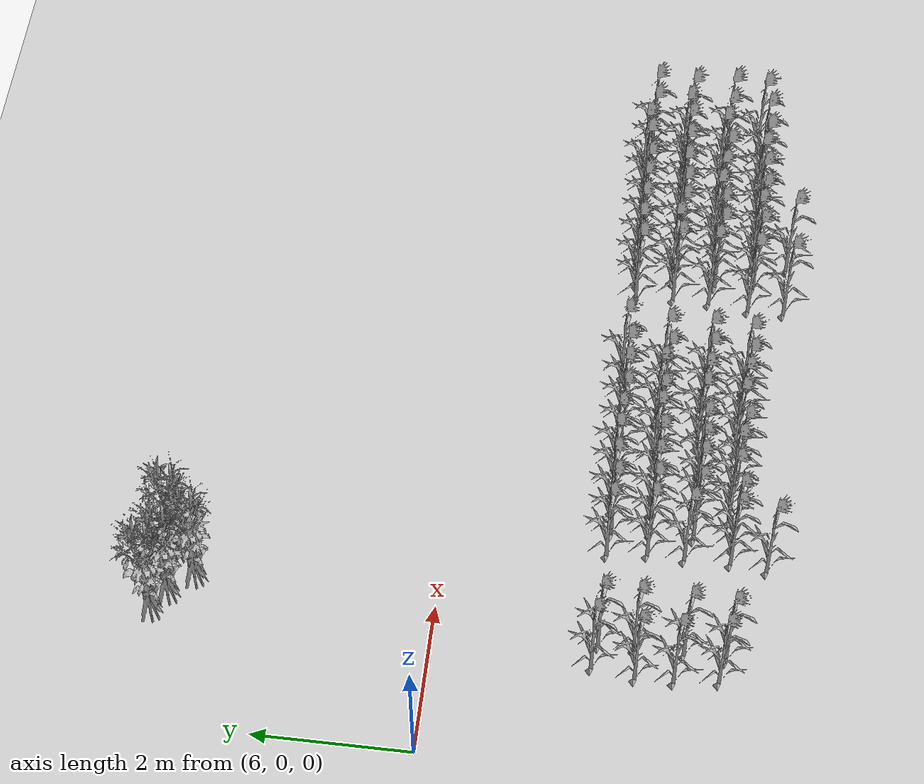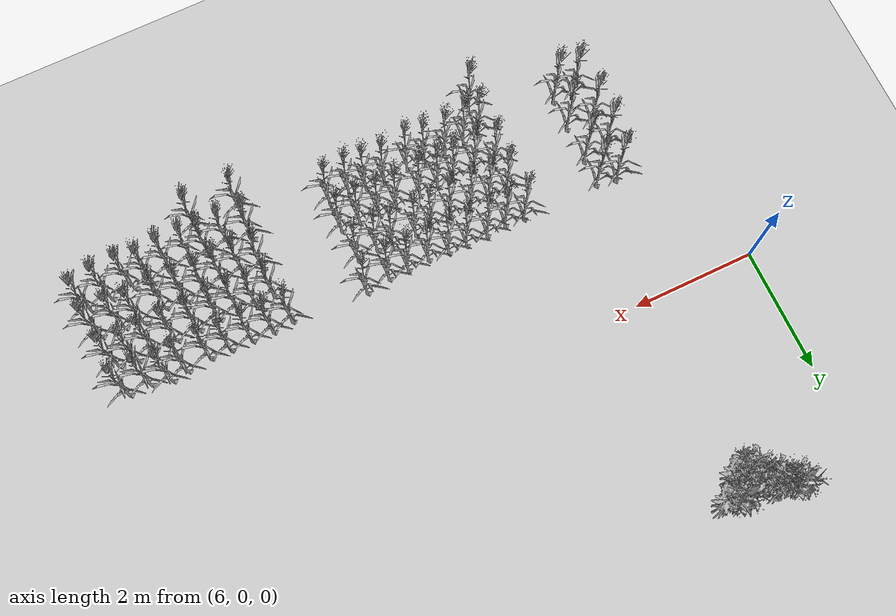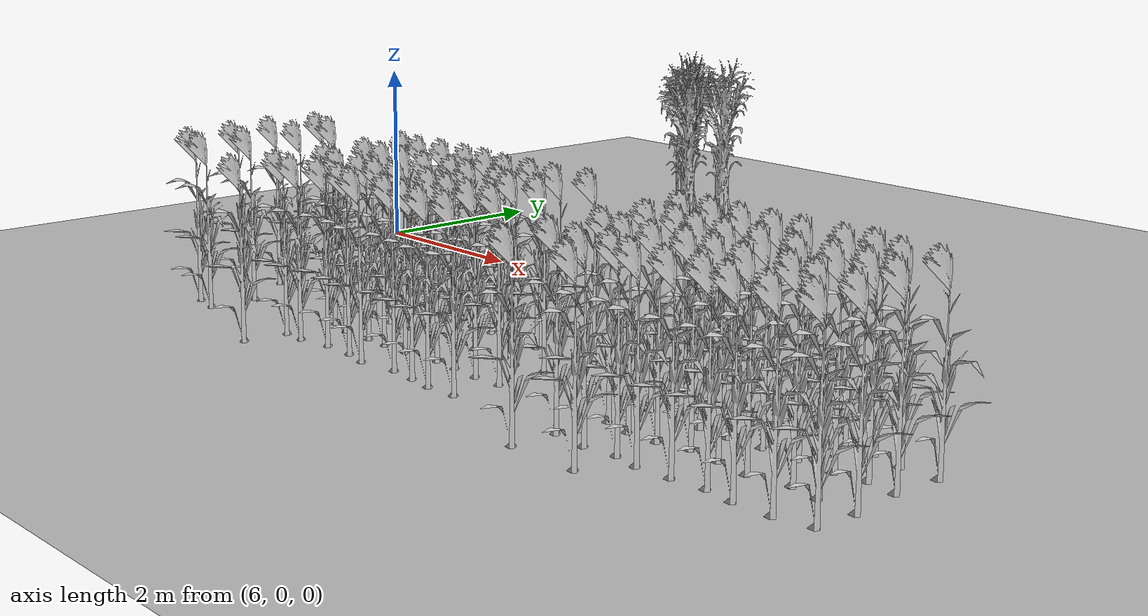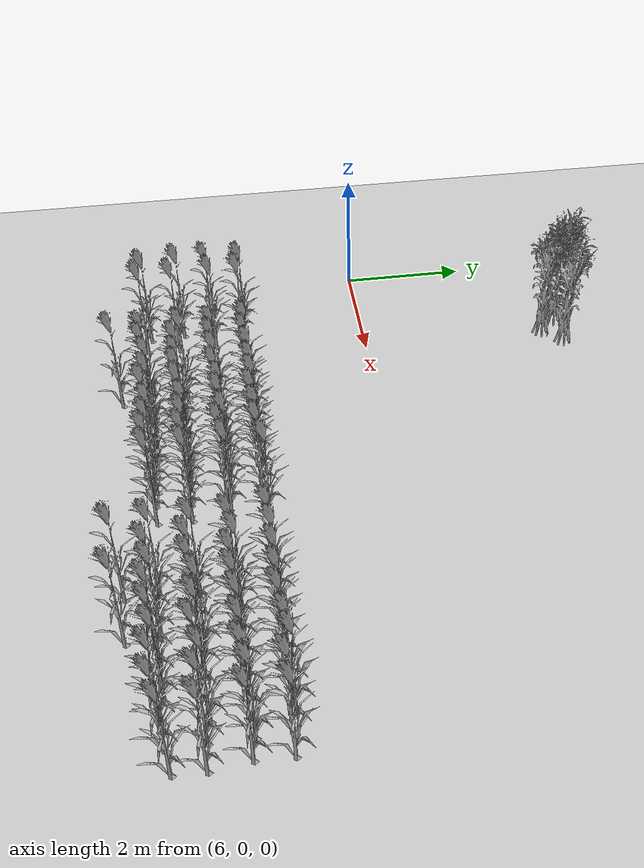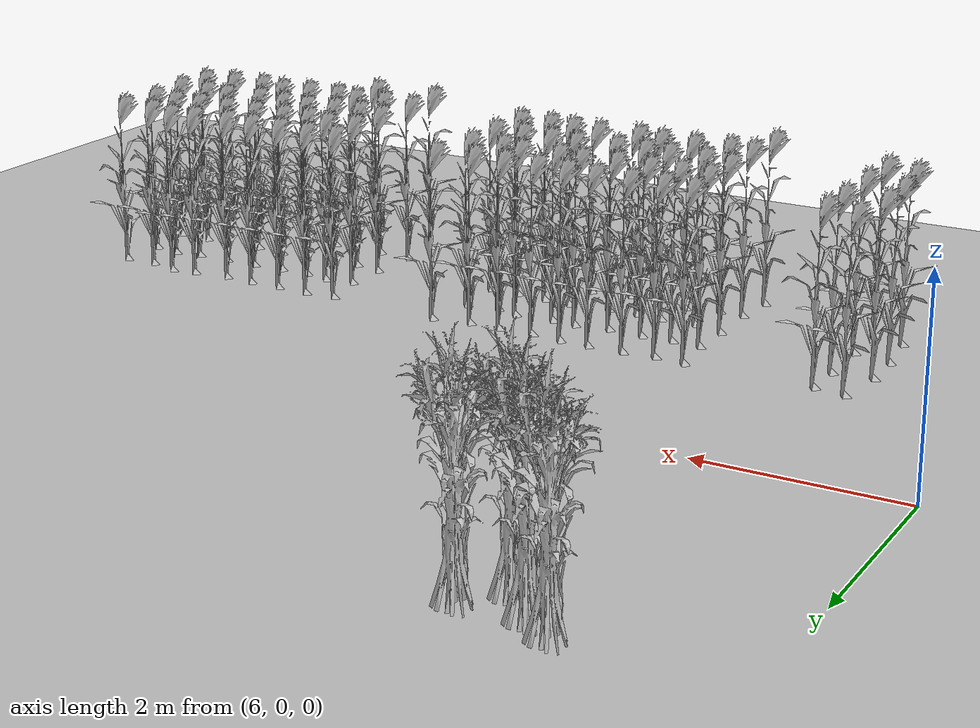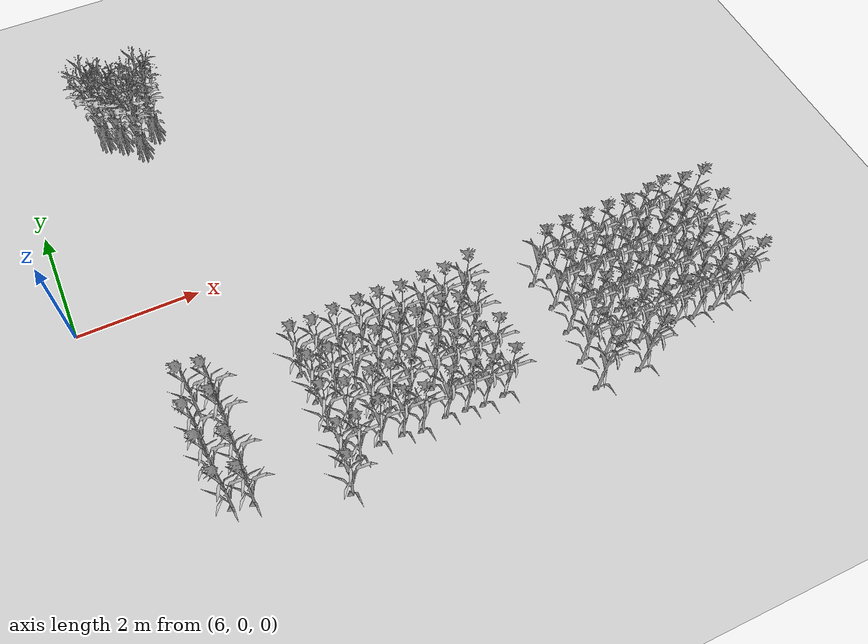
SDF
<sdf version="1.7">
 <world name="farmland_world">
  <model name="ground_plane">
   <static>1</static>
   <link name="link">
    <collision name="collision">
     <geometry><plane><normal>0 0 1</normal><size>40.0 40.0</size></plane></geometry>
     <surface><friction><ode><mu>100</mu><mu2>50</mu2></ode></friction></surface>
    </collision>
    <visual name="visual">
     <cast_shadows>0</cast_shadows>
     <geometry><plane><normal>0 0 1</normal><size>40.0 40.0</size></plane></geometry>
     <material>
      <script><uri>file://media/materials/scripts/gazebo.material</uri><name>Gazebo/Grey</name></script>
     </material>
    </visual>
   </link>
  </model>
  <model name="tree_2_120">
   <static>1</static>
   <link name="link">
    <collision name="collision">
     <geometry><mesh><uri>model://Corn/corn_5p.obj</uri><scale>1 1 1</scale></mesh></geometry>
     <surface><friction><ode><mu>100</mu><mu2>50</mu2></ode></friction></surface>
    </collision>
    <visual name="visual">
     <geometry><mesh><uri>model://Corn/corn_5p.obj</uri><scale>1 1 1</scale></mesh></geometry>
    </visual>
   </link>
   <pose>8.04357971192772 3.0130881612376155 0 0 0 0</pose>
  </model>
  <model name="tree_2_121">
   <static>1</static>
   <link name="link">
    <collision name="collision">
     <geometry><mesh><uri>model://Corn/corn_5p.obj</uri><scale>1 1 1</scale></mesh></geometry>
     <surface><friction><ode><mu>100</mu><mu2>50</mu2></ode></friction></surface>
    </collision>
    <visual name="visual">
     <geometry><mesh><uri>model://Corn/corn_5p.obj</uri><scale>1 1 1</scale></mesh></geometry>
    </visual>
   </link>
   <pose>7.769387552986887 3.3017834430280772 0 0 0 0</pose>
  </model>
  <model name="tree_2_122">
   <static>1</static>
   <link name="link">
    <collision name="collision">
     <geometry><mesh><uri>model://Corn/corn_5p.obj</uri><scale>1 1 1</scale></mesh></geometry>
     <surface><friction><ode><mu>100</mu><mu2>50</mu2></ode></friction></surface>
    </collision>
    <visual name="visual">
     <geometry><mesh><uri>model://Corn/corn_5p.obj</uri><scale>1 1 1</scale></mesh></geometry>
    </visual>
   </link>
   <pose>7.510651260987268 3.4666230860154768 0 0 0 0</pose>
  </model>
  <model name="tree_2_400">
   <static>1</static>
   <link name="link">
    <collision name="collision">
     <geometry><mesh><uri>model://Corn/corn_5p.obj</uri><scale>1 1 1</scale></mesh></geometry>
     <surface><friction><ode><mu>100</mu><mu2>50</mu2></ode></friction></surface>
    </collision>
    <visual name="visual">
     <geometry><mesh><uri>model://Corn/corn_5p.obj</uri><scale>1 1 1</scale></mesh></geometry>
    </visual>
   </link>
   <pose>8.346749247156719 3.3149582855917017 0 0 0 0</pose>
  </model>
  <model name="tree_3_210">
   <static>1</static>
   <link name="link">
    <collision name="collision">
     <geometry><mesh><uri>model://Corn_low_poly/corn.obj</uri><scale>1 1 1</scale></mesh></geometry>
     <surface><friction><ode><mu>100</mu><mu2>50</mu2></ode></friction></surface>
    </collision>
    <visual name="visual">
     <geometry><mesh><uri>model://Corn_low_poly/corn.obj</uri><scale>1 1 1</scale></mesh></geometry>
    </visual>
   </link>
   <pose>7.369794519775557 -1.970937490161373 0 0 0 0</pose>
  </model>
  <model name="tree_3_211">
   <static>1</static>
   <link name="link">
    <collision name="collision">
     <geometry><mesh><uri>model://Corn_low_poly/corn.obj</uri><scale>1 1 1</scale></mesh></geometry>
     <surface><friction><ode><mu>100</mu><mu2>50</mu2></ode></friction></surface>
    </collision>
    <visual name="visual">
     <geometry><mesh><uri>model://Corn_low_poly/corn.obj</uri><scale>1 1 1</scale></mesh></geometry>
    </visual>
   </link>
   <pose>7.2856913873748255 -2.5117933136473316 0 0 0 0</pose>
  </model>
  <model name="tree_3_212">
   <static>1</static>
   <link name="link">
    <collision name="collision">
     <geometry><mesh><uri>model://Corn_low_poly/corn.obj</uri><scale>1 1 1</scale></mesh></geometry>
     <surface><friction><ode><mu>100</mu><mu2>50</mu2></ode></friction></surface>
    </collision>
    <visual name="visual">
     <geometry><mesh><uri>model://Corn_low_poly/corn.obj</uri><scale>1 1 1</scale></mesh></geometry>
    </visual>
   </link>
   <pose>7.290873557259499 -2.98555031154544 0 0 0 0</pose>
  </model>
  <model name="tree_3_213">
   <static>1</static>
   <link name="link">
    <collision name="collision">
     <geometry><mesh><uri>model://Corn_low_poly/corn.obj</uri><scale>1 1 1</scale></mesh></geometry>
     <surface><friction><ode><mu>100</mu><mu2>50</mu2></ode></friction></surface>
    </collision>
    <visual name="visual">
     <geometry><mesh><uri>model://Corn_low_poly/corn.obj</uri><scale>1 1 1</scale></mesh></geometry>
    </visual>
   </link>
   <pose>7.353971171595851 -3.5365125737867995 0 0 0 0</pose>
  </model>
  <model name="tree_3_240">
   <static>1</static>
   <link name="link">
    <collision name="collision">
     <geometry><mesh><uri>model://Corn_low_poly/corn.obj</uri><scale>1 1 1</scale></mesh></geometry>
     <surface><friction><ode><mu>100</mu><mu2>50</mu2></ode></friction></surface>
    </collision>
    <visual name="visual">
     <geometry><mesh><uri>model://Corn_low_poly/corn.obj</uri><scale>1 1 1</scale></mesh></geometry>
    </visual>
   </link>
   <pose>7.685527965094424 -2.027486811773022 0 0 0 0</pose>
  </model>
  <model name="tree_3_241">
   <static>1</static>
   <link name="link">
    <collision name="collision">
     <geometry><mesh><uri>model://Corn_low_poly/corn.obj</uri><scale>1 1 1</scale></mesh></geometry>
     <surface><friction><ode><mu>100</mu><mu2>50</mu2></ode></friction></surface>
    </collision>
    <visual name="visual">
     <geometry><mesh><uri>model://Corn_low_poly/corn.obj</uri><scale>1 1 1</scale></mesh></geometry>
    </visual>
   </link>
   <pose>7.678549333669729 -2.468305985178104 0 0 0 0</pose>
  </model>
  <model name="tree_3_242">
   <static>1</static>
   <link name="link">
    <collision name="collision">
     <geometry><mesh><uri>model://Corn_low_poly/corn.obj</uri><scale>1 1 1</scale></mesh></geometry>
     <surface><friction><ode><mu>100</mu><mu2>50</mu2></ode></friction></surface>
    </collision>
    <visual name="visual">
     <geometry><mesh><uri>model://Corn_low_poly/corn.obj</uri><scale>1 1 1</scale></mesh></geometry>
    </visual>
   </link>
   <pose>7.678616627902855 -3.0826323150215247 0 0 0 0</pose>
  </model>
  <model name="tree_3_243">
   <static>1</static>
   <link name="link">
    <collision name="collision">
     <geometry><mesh><uri>model://Corn_low_poly/corn.obj</uri><scale>1 1 1</scale></mesh></geometry>
     <surface><friction><ode><mu>100</mu><mu2>50</mu2></ode></friction></surface>
    </collision>
    <visual name="visual">
     <geometry><mesh><uri>model://Corn_low_poly/corn.obj</uri><scale>1 1 1</scale></mesh></geometry>
    </visual>
   </link>
   <pose>7.661434512820129 -3.5992586650557956 0 0 0 0</pose>
  </model>
  <model name="tree_3_270">
   <static>1</static>
   <link name="link">
    <collision name="collision">
     <geometry><mesh><uri>model://Corn_low_poly/corn.obj</uri><scale>1 1 1</scale></mesh></geometry>
     <surface><friction><ode><mu>100</mu><mu2>50</mu2></ode></friction></surface>
    </collision>
    <visual name="visual">
     <geometry><mesh><uri>model://Corn_low_poly/corn.obj</uri><scale>1 1 1</scale></mesh></geometry>
    </visual>
   </link>
   <pose>8.978682090561577 -2.0122664876187484 0 0 0 0</pose>
  </model>
  <model name="tree_3_271">
   <static>1</static>
   <link name="link">
    <collision name="collision">
     <geometry><mesh><uri>model://Corn_low_poly/corn.obj</uri><scale>1 1 1</scale></mesh></geometry>
     <surface><friction><ode><mu>100</mu><mu2>50</mu2></ode></friction></surface>
    </collision>
    <visual name="visual">
     <geometry><mesh><uri>model://Corn_low_poly/corn.obj</uri><scale>1 1 1</scale></mesh></geometry>
    </visual>
   </link>
   <pose>9.040085086855983 -2.5209595092459622 0 0 0 0</pose>
  </model>
  <model name="tree_3_272">
   <static>1</static>
   <link name="link">
    <collision name="collision">
     <geometry><mesh><uri>model://Corn_low_poly/corn.obj</uri><scale>1 1 1</scale></mesh></geometry>
     <surface><friction><ode><mu>100</mu><mu2>50</mu2></ode></friction></surface>
    </collision>
    <visual name="visual">
     <geometry><mesh><uri>model://Corn_low_poly/corn.obj</uri><scale>1 1 1</scale></mesh></geometry>
    </visual>
   </link>
   <pose>9.024625678471299 -2.9894857367028633 0 0 0 0</pose>
  </model>
  <model name="tree_3_273">
   <static>1</static>
   <link name="link">
    <collision name="collision">
     <geometry><mesh><uri>model://Corn_low_poly/corn.obj</uri><scale>1 1 1</scale></mesh></geometry>
     <surface><friction><ode><mu>100</mu><mu2>50</mu2></ode></friction></surface>
    </collision>
    <visual name="visual">
     <geometry><mesh><uri>model://Corn_low_poly/corn.obj</uri><scale>1 1 1</scale></mesh></geometry>
    </visual>
   </link>
   <pose>9.030025059913507 -3.569100505424842 0 0 0 0</pose>
  </model>
  <model name="tree_3_274">
   <static>1</static>
   <link name="link">
    <collision name="collision">
     <geometry><mesh><uri>model://Corn_low_poly/corn.obj</uri><scale>1 1 1</scale></mesh></geometry>
     <surface><friction><ode><mu>100</mu><mu2>50</mu2></ode></friction></surface>
    </collision>
    <visual name="visual">
     <geometry><mesh><uri>model://Corn_low_poly/corn.obj</uri><scale>1 1 1</scale></mesh></geometry>
    </visual>
   </link>
   <pose>8.976619542908399 -4.025476766942341 0 0 0 0</pose>
  </model>
  <model name="tree_3_300">
   <static>1</static>
   <link name="link">
    <collision name="collision">
     <geometry><mesh><uri>model://Corn_low_poly/corn.obj</uri><scale>1 1 1</scale></mesh></geometry>
     <surface><friction><ode><mu>100</mu><mu2>50</mu2></ode></friction></surface>
    </collision>
    <visual name="visual">
     <geometry><mesh><uri>model://Corn_low_poly/corn.obj</uri><scale>1 1 1</scale></mesh></geometry>
    </visual>
   </link>
   <pose>9.292524992805745 -2.0422990189274417 0 0 0 0</pose>
  </model>
  <model name="tree_3_301">
   <static>1</static>
   <link name="link">
    <collision name="collision">
     <geometry><mesh><uri>model://Corn_low_poly/corn.obj</uri><scale>1 1 1</scale></mesh></geometry>
     <surface><friction><ode><mu>100</mu><mu2>50</mu2></ode></friction></surface>
    </collision>
    <visual name="visual">
     <geometry><mesh><uri>model://Corn_low_poly/corn.obj</uri><scale>1 1 1</scale></mesh></geometry>
    </visual>
   </link>
   <pose>9.339759190310382 -2.53545678926814 0 0 0 0</pose>
  </model>
  <model name="tree_3_302">
   <static>1</static>
   <link name="link">
    <collision name="collision">
     <geometry><mesh><uri>model://Corn_low_poly/corn.obj</uri><scale>1 1 1</scale></mesh></geometry>
     <surface><friction><ode><mu>100</mu><mu2>50</mu2></ode></friction></surface>
    </collision>
    <visual name="visual">
     <geometry><mesh><uri>model://Corn_low_poly/corn.obj</uri><scale>1 1 1</scale></mesh></geometry>
    </visual>
   </link>
   <pose>9.336894459739337 -3.0802019725710124 0 0 0 0</pose>
  </model>
  <model name="tree_3_303">
   <static>1</static>
   <link name="link">
    <collision name="collision">
     <geometry><mesh><uri>model://Corn_low_poly/corn.obj</uri><scale>1 1 1</scale></mesh></geometry>
     <surface><friction><ode><mu>100</mu><mu2>50</mu2></ode></friction></surface>
    </collision>
    <visual name="visual">
     <geometry><mesh><uri>model://Corn_low_poly/corn.obj</uri><scale>1 1 1</scale></mesh></geometry>
    </visual>
   </link>
   <pose>9.286190175258033 -3.5769592383417583 0 0 0 0</pose>
  </model>
  <model name="tree_3_330">
   <static>1</static>
   <link name="link">
    <collision name="collision">
     <geometry><mesh><uri>model://Corn_low_poly/corn.obj</uri><scale>1 1 1</scale></mesh></geometry>
     <surface><friction><ode><mu>100</mu><mu2>50</mu2></ode></friction></surface>
    </collision>
    <visual name="visual">
     <geometry><mesh><uri>model://Corn_low_poly/corn.obj</uri><scale>1 1 1</scale></mesh></geometry>
    </visual>
   </link>
   <pose>9.622393552487715 -2.011622877165077 0 0 0 0</pose>
  </model>
  <model name="tree_3_331">
   <static>1</static>
   <link name="link">
    <collision name="collision">
     <geometry><mesh><uri>model://Corn_low_poly/corn.obj</uri><scale>1 1 1</scale></mesh></geometry>
     <surface><friction><ode><mu>100</mu><mu2>50</mu2></ode></friction></surface>
    </collision>
    <visual name="visual">
     <geometry><mesh><uri>model://Corn_low_poly/corn.obj</uri><scale>1 1 1</scale></mesh></geometry>
    </visual>
   </link>
   <pose>9.660978657652999 -2.5239202772089584 0 0 0 0</pose>
  </model>
  <model name="tree_3_332">
   <static>1</static>
   <link name="link">
    <collision name="collision">
     <geometry><mesh><uri>model://Corn_low_poly/corn.obj</uri><scale>1 1 1</scale></mesh></geometry>
     <surface><friction><ode><mu>100</mu><mu2>50</mu2></ode></friction></surface>
    </collision>
    <visual name="visual">
     <geometry><mesh><uri>model://Corn_low_poly/corn.obj</uri><scale>1 1 1</scale></mesh></geometry>
    </visual>
   </link>
   <pose>9.706802185447382 -3.072479163819575 0 0 0 0</pose>
  </model>
  <model name="tree_3_333">
   <static>1</static>
   <link name="link">
    <collision name="collision">
     <geometry><mesh><uri>model://Corn_low_poly/corn.obj</uri><scale>1 1 1</scale></mesh></geometry>
     <surface><friction><ode><mu>100</mu><mu2>50</mu2></ode></friction></surface>
    </collision>
    <visual name="visual">
     <geometry><mesh><uri>model://Corn_low_poly/corn.obj</uri><scale>1 1 1</scale></mesh></geometry>
    </visual>
   </link>
   <pose>9.642625379760412 -3.5067399786313733 0 0 0 0</pose>
  </model>
  <model name="tree_3_360">
   <static>1</static>
   <link name="link">
    <collision name="collision">
     <geometry><mesh><uri>model://Corn_low_poly/corn.obj</uri><scale>1 1 1</scale></mesh></geometry>
     <surface><friction><ode><mu>100</mu><mu2>50</mu2></ode></friction></surface>
    </collision>
    <visual name="visual">
     <geometry><mesh><uri>model://Corn_low_poly/corn.obj</uri><scale>1 1 1</scale></mesh></geometry>
    </visual>
   </link>
   <pose>9.987312450846602 -2.0041174285012717 0 0 0 0</pose>
  </model>
  <model name="tree_3_361">
   <static>1</static>
   <link name="link">
    <collision name="collision">
     <geometry><mesh><uri>model://Corn_low_poly/corn.obj</uri><scale>1 1 1</scale></mesh></geometry>
     <surface><friction><ode><mu>100</mu><mu2>50</mu2></ode></friction></surface>
    </collision>
    <visual name="visual">
     <geometry><mesh><uri>model://Corn_low_poly/corn.obj</uri><scale>1 1 1</scale></mesh></geometry>
    </visual>
   </link>
   <pose>10.023859331028888 -2.538230301358276 0 0 0 0</pose>
  </model>
  <model name="tree_3_362">
   <static>1</static>
   <link name="link">
    <collision name="collision">
     <geometry><mesh><uri>model://Corn_low_poly/corn.obj</uri><scale>1 1 1</scale></mesh></geometry>
     <surface><friction><ode><mu>100</mu><mu2>50</mu2></ode></friction></surface>
    </collision>
    <visual name="visual">
     <geometry><mesh><uri>model://Corn_low_poly/corn.obj</uri><scale>1 1 1</scale></mesh></geometry>
    </visual>
   </link>
   <pose>9.975912978520011 -3.0810238017620586 0 0 0 0</pose>
  </model>
  <model name="tree_3_363">
   <static>1</static>
   <link name="link">
    <collision name="collision">
     <geometry><mesh><uri>model://Corn_low_poly/corn.obj</uri><scale>1 1 1</scale></mesh></geometry>
     <surface><friction><ode><mu>100</mu><mu2>50</mu2></ode></friction></surface>
    </collision>
    <visual name="visual">
     <geometry><mesh><uri>model://Corn_low_poly/corn.obj</uri><scale>1 1 1</scale></mesh></geometry>
    </visual>
   </link>
   <pose>10.004704408089747 -3.5124462776924523 0 0 0 0</pose>
  </model>
  <model name="tree_3_390">
   <static>1</static>
   <link name="link">
    <collision name="collision">
     <geometry><mesh><uri>model://Corn_low_poly/corn.obj</uri><scale>1 1 1</scale></mesh></geometry>
     <surface><friction><ode><mu>100</mu><mu2>50</mu2></ode></friction></surface>
    </collision>
    <visual name="visual">
     <geometry><mesh><uri>model://Corn_low_poly/corn.obj</uri><scale>1 1 1</scale></mesh></geometry>
    </visual>
   </link>
   <pose>10.292987297121025 -2.0080922359807314 0 0 0 0</pose>
  </model>
  <model name="tree_3_391">
   <static>1</static>
   <link name="link">
    <collision name="collision">
     <geometry><mesh><uri>model://Corn_low_poly/corn.obj</uri><scale>1 1 1</scale></mesh></geometry>
     <surface><friction><ode><mu>100</mu><mu2>50</mu2></ode></friction></surface>
    </collision>
    <visual name="visual">
     <geometry><mesh><uri>model://Corn_low_poly/corn.obj</uri><scale>1 1 1</scale></mesh></geometry>
    </visual>
   </link>
   <pose>10.375018549700316 -2.4842416791181234 0 0 0 0</pose>
  </model>
  <model name="tree_3_392">
   <static>1</static>
   <link name="link">
    <collision name="collision">
     <geometry><mesh><uri>model://Corn_low_poly/corn.obj</uri><scale>1 1 1</scale></mesh></geometry>
     <surface><friction><ode><mu>100</mu><mu2>50</mu2></ode></friction></surface>
    </collision>
    <visual name="visual">
     <geometry><mesh><uri>model://Corn_low_poly/corn.obj</uri><scale>1 1 1</scale></mesh></geometry>
    </visual>
   </link>
   <pose>10.290886504799403 -3.071423018015004 0 0 0 0</pose>
  </model>
  <model name="tree_3_393">
   <static>1</static>
   <link name="link">
    <collision name="collision">
     <geometry><mesh><uri>model://Corn_low_poly/corn.obj</uri><scale>1 1 1</scale></mesh></geometry>
     <surface><friction><ode><mu>100</mu><mu2>50</mu2></ode></friction></surface>
    </collision>
    <visual name="visual">
     <geometry><mesh><uri>model://Corn_low_poly/corn.obj</uri><scale>1 1 1</scale></mesh></geometry>
    </visual>
   </link>
   <pose>10.283833184186852 -3.5740963417907574 0 0 0 0</pose>
  </model>
  <model name="tree_3_420">
   <static>1</static>
   <link name="link">
    <collision name="collision">
     <geometry><mesh><uri>model://Corn_low_poly/corn.obj</uri><scale>1 1 1</scale></mesh></geometry>
     <surface><friction><ode><mu>100</mu><mu2>50</mu2></ode></friction></surface>
    </collision>
    <visual name="visual">
     <geometry><mesh><uri>model://Corn_low_poly/corn.obj</uri><scale>1 1 1</scale></mesh></geometry>
    </visual>
   </link>
   <pose>10.626259388033088 -2.04502143156429 0 0 0 0</pose>
  </model>
  <model name="tree_3_421">
   <static>1</static>
   <link name="link">
    <collision name="collision">
     <geometry><mesh><uri>model://Corn_low_poly/corn.obj</uri><scale>1 1 1</scale></mesh></geometry>
     <surface><friction><ode><mu>100</mu><mu2>50</mu2></ode></friction></surface>
    </collision>
    <visual name="visual">
     <geometry><mesh><uri>model://Corn_low_poly/corn.obj</uri><scale>1 1 1</scale></mesh></geometry>
    </visual>
   </link>
   <pose>10.63303103599766 -2.502255449278744 0 0 0 0</pose>
  </model>
  <model name="tree_3_422">
   <static>1</static>
   <link name="link">
    <collision name="collision">
     <geometry><mesh><uri>model://Corn_low_poly/corn.obj</uri><scale>1 1 1</scale></mesh></geometry>
     <surface><friction><ode><mu>100</mu><mu2>50</mu2></ode></friction></surface>
    </collision>
    <visual name="visual">
     <geometry><mesh><uri>model://Corn_low_poly/corn.obj</uri><scale>1 1 1</scale></mesh></geometry>
    </visual>
   </link>
   <pose>10.716298916198658 -3.021823302006742 0 0 0 0</pose>
  </model>
  <model name="tree_3_423">
   <static>1</static>
   <link name="link">
    <collision name="collision">
     <geometry><mesh><uri>model://Corn_low_poly/corn.obj</uri><scale>1 1 1</scale></mesh></geometry>
     <surface><friction><ode><mu>100</mu><mu2>50</mu2></ode></friction></surface>
    </collision>
    <visual name="visual">
     <geometry><mesh><uri>model://Corn_low_poly/corn.obj</uri><scale>1 1 1</scale></mesh></geometry>
    </visual>
   </link>
   <pose>10.70649710108098 -3.511057494556414 0 0 0 0</pose>
  </model>
  <model name="tree_3_450">
   <static>1</static>
   <link name="link">
    <collision name="collision">
     <geometry><mesh><uri>model://Corn_low_poly/corn.obj</uri><scale>1 1 1</scale></mesh></geometry>
     <surface><friction><ode><mu>100</mu><mu2>50</mu2></ode></friction></surface>
    </collision>
    <visual name="visual">
     <geometry><mesh><uri>model://Corn_low_poly/corn.obj</uri><scale>1 1 1</scale></mesh></geometry>
    </visual>
   </link>
   <pose>10.983723755823545 -2.0277126692752088 0 0 0 0</pose>
  </model>
  <model name="tree_3_451">
   <static>1</static>
   <link name="link">
    <collision name="collision">
     <geometry><mesh><uri>model://Corn_low_poly/corn.obj</uri><scale>1 1 1</scale></mesh></geometry>
     <surface><friction><ode><mu>100</mu><mu2>50</mu2></ode></friction></surface>
    </collision>
    <visual name="visual">
     <geometry><mesh><uri>model://Corn_low_poly/corn.obj</uri><scale>1 1 1</scale></mesh></geometry>
    </visual>
   </link>
   <pose>11.040696475302072 -2.469869753311957 0 0 0 0</pose>
  </model>
  <model name="tree_3_452">
   <static>1</static>
   <link name="link">
    <collision name="collision">
     <geometry><mesh><uri>model://Corn_low_poly/corn.obj</uri><scale>1 1 1</scale></mesh></geometry>
     <surface><friction><ode><mu>100</mu><mu2>50</mu2></ode></friction></surface>
    </collision>
    <visual name="visual">
     <geometry><mesh><uri>model://Corn_low_poly/corn.obj</uri><scale>1 1 1</scale></mesh></geometry>
    </visual>
   </link>
   <pose>11.011398937852684 -3.0423751665314445 0 0 0 0</pose>
  </model>
  <model name="tree_3_453">
   <static>1</static>
   <link name="link">
    <collision name="collision">
     <geometry><mesh><uri>model://Corn_low_poly/corn.obj</uri><scale>1 1 1</scale></mesh></geometry>
     <surface><friction><ode><mu>100</mu><mu2>50</mu2></ode></friction></surface>
    </collision>
    <visual name="visual">
     <geometry><mesh><uri>model://Corn_low_poly/corn.obj</uri><scale>1 1 1</scale></mesh></geometry>
    </visual>
   </link>
   <pose>11.017196231576007 -3.5395434829519576 0 0 0 0</pose>
  </model>
  <model name="tree_3_480">
   <static>1</static>
   <link name="link">
    <collision name="collision">
     <geometry><mesh><uri>model://Corn_low_poly/corn.obj</uri><scale>1 1 1</scale></mesh></geometry>
     <surface><friction><ode><mu>100</mu><mu2>50</mu2></ode></friction></surface>
    </collision>
    <visual name="visual">
     <geometry><mesh><uri>model://Corn_low_poly/corn.obj</uri><scale>1 1 1</scale></mesh></geometry>
    </visual>
   </link>
   <pose>11.312919422427465 -2.027162564590065 0 0 0 0</pose>
  </model>
  <model name="tree_3_481">
   <static>1</static>
   <link name="link">
    <collision name="collision">
     <geometry><mesh><uri>model://Corn_low_poly/corn.obj</uri><scale>1 1 1</scale></mesh></geometry>
     <surface><friction><ode><mu>100</mu><mu2>50</mu2></ode></friction></surface>
    </collision>
    <visual name="visual">
     <geometry><mesh><uri>model://Corn_low_poly/corn.obj</uri><scale>1 1 1</scale></mesh></geometry>
    </visual>
   </link>
   <pose>11.28287060041693 -2.5452958089495192 0 0 0 0</pose>
  </model>
  <model name="tree_3_482">
   <static>1</static>
   <link name="link">
    <collision name="collision">
     <geometry><mesh><uri>model://Corn_low_poly/corn.obj</uri><scale>1 1 1</scale></mesh></geometry>
     <surface><friction><ode><mu>100</mu><mu2>50</mu2></ode></friction></surface>
    </collision>
    <visual name="visual">
     <geometry><mesh><uri>model://Corn_low_poly/corn.obj</uri><scale>1 1 1</scale></mesh></geometry>
    </visual>
   </link>
   <pose>11.340034722740373 -3.069454616067834 0 0 0 0</pose>
  </model>
  <model name="tree_3_483">
   <static>1</static>
   <link name="link">
    <collision name="collision">
     <geometry><mesh><uri>model://Corn_low_poly/corn.obj</uri><scale>1 1 1</scale></mesh></geometry>
     <surface><friction><ode><mu>100</mu><mu2>50</mu2></ode></friction></surface>
    </collision>
    <visual name="visual">
     <geometry><mesh><uri>model://Corn_low_poly/corn.obj</uri><scale>1 1 1</scale></mesh></geometry>
    </visual>
   </link>
   <pose>11.296350057636705 -3.5763666508879752 0 0 0 0</pose>
  </model>
  <model name="tree_3_510">
   <static>1</static>
   <link name="link">
    <collision name="collision">
     <geometry><mesh><uri>model://Corn_low_poly/corn.obj</uri><scale>1 1 1</scale></mesh></geometry>
     <surface><friction><ode><mu>100</mu><mu2>50</mu2></ode></friction></surface>
    </collision>
    <visual name="visual">
     <geometry><mesh><uri>model://Corn_low_poly/corn.obj</uri><scale>1 1 1</scale></mesh></geometry>
    </visual>
   </link>
   <pose>11.715445190778427 -1.966340978732283 0 0 0 0</pose>
  </model>
  <model name="tree_3_511">
   <static>1</static>
   <link name="link">
    <collision name="collision">
     <geometry><mesh><uri>model://Corn_low_poly/corn.obj</uri><scale>1 1 1</scale></mesh></geometry>
     <surface><friction><ode><mu>100</mu><mu2>50</mu2></ode></friction></surface>
    </collision>
    <visual name="visual">
     <geometry><mesh><uri>model://Corn_low_poly/corn.obj</uri><scale>1 1 1</scale></mesh></geometry>
    </visual>
   </link>
   <pose>11.623592363847498 -2.4988257413671726 0 0 0 0</pose>
  </model>
  <model name="tree_3_512">
   <static>1</static>
   <link name="link">
    <collision name="collision">
     <geometry><mesh><uri>model://Corn_low_poly/corn.obj</uri><scale>1 1 1</scale></mesh></geometry>
     <surface><friction><ode><mu>100</mu><mu2>50</mu2></ode></friction></surface>
    </collision>
    <visual name="visual">
     <geometry><mesh><uri>model://Corn_low_poly/corn.obj</uri><scale>1 1 1</scale></mesh></geometry>
    </visual>
   </link>
   <pose>11.657662450810287 -3.0580251417325974 0 0 0 0</pose>
  </model>
  <model name="tree_3_513">
   <static>1</static>
   <link name="link">
    <collision name="collision">
     <geometry><mesh><uri>model://Corn_low_poly/corn.obj</uri><scale>1 1 1</scale></mesh></geometry>
     <surface><friction><ode><mu>100</mu><mu2>50</mu2></ode></friction></surface>
    </collision>
    <visual name="visual">
     <geometry><mesh><uri>model://Corn_low_poly/corn.obj</uri><scale>1 1 1</scale></mesh></geometry>
    </visual>
   </link>
   <pose>11.63865990092762 -3.5583951397912936 0 0 0 0</pose>
  </model>
  <model name="tree_3_540">
   <static>1</static>
   <link name="link">
    <collision name="collision">
     <geometry><mesh><uri>model://Corn_low_poly/corn.obj</uri><scale>1 1 1</scale></mesh></geometry>
     <surface><friction><ode><mu>100</mu><mu2>50</mu2></ode></friction></surface>
    </collision>
    <visual name="visual">
     <geometry><mesh><uri>model://Corn_low_poly/corn.obj</uri><scale>1 1 1</scale></mesh></geometry>
    </visual>
   </link>
   <pose>12.95237530625401 -2.0424419963365343 0 0 0 0</pose>
  </model>
  <model name="tree_3_541">
   <static>1</static>
   <link name="link">
    <collision name="collision">
     <geometry><mesh><uri>model://Corn_low_poly/corn.obj</uri><scale>1 1 1</scale></mesh></geometry>
     <surface><friction><ode><mu>100</mu><mu2>50</mu2></ode></friction></surface>
    </collision>
    <visual name="visual">
     <geometry><mesh><uri>model://Corn_low_poly/corn.obj</uri><scale>1 1 1</scale></mesh></geometry>
    </visual>
   </link>
   <pose>13.042858982420348 -2.5394761883913755 0 0 0 0</pose>
  </model>
  <model name="tree_3_542">
   <static>1</static>
   <link name="link">
    <collision name="collision">
     <geometry><mesh><uri>model://Corn_low_poly/corn.obj</uri><scale>1 1 1</scale></mesh></geometry>
     <surface><friction><ode><mu>100</mu><mu2>50</mu2></ode></friction></surface>
    </collision>
    <visual name="visual">
     <geometry><mesh><uri>model://Corn_low_poly/corn.obj</uri><scale>1 1 1</scale></mesh></geometry>
    </visual>
   </link>
   <pose>13.028956414449695 -3.0185729146257962 0 0 0 0</pose>
  </model>
  <model name="tree_3_543">
   <static>1</static>
   <link name="link">
    <collision name="collision">
     <geometry><mesh><uri>model://Corn_low_poly/corn.obj</uri><scale>1 1 1</scale></mesh></geometry>
     <surface><friction><ode><mu>100</mu><mu2>50</mu2></ode></friction></surface>
    </collision>
    <visual name="visual">
     <geometry><mesh><uri>model://Corn_low_poly/corn.obj</uri><scale>1 1 1</scale></mesh></geometry>
    </visual>
   </link>
   <pose>12.969616864633894 -3.5493789348301816 0 0 0 0</pose>
  </model>
  <model name="tree_3_544">
   <static>1</static>
   <link name="link">
    <collision name="collision">
     <geometry><mesh><uri>model://Corn_low_poly/corn.obj</uri><scale>1 1 1</scale></mesh></geometry>
     <surface><friction><ode><mu>100</mu><mu2>50</mu2></ode></friction></surface>
    </collision>
    <visual name="visual">
     <geometry><mesh><uri>model://Corn_low_poly/corn.obj</uri><scale>1 1 1</scale></mesh></geometry>
    </visual>
   </link>
   <pose>12.971202307982425 -4.024955077719942 0 0 0 0</pose>
  </model>
  <model name="tree_3_570">
   <static>1</static>
   <link name="link">
    <collision name="collision">
     <geometry><mesh><uri>model://Corn_low_poly/corn.obj</uri><scale>1 1 1</scale></mesh></geometry>
     <surface><friction><ode><mu>100</mu><mu2>50</mu2></ode></friction></surface>
    </collision>
    <visual name="visual">
     <geometry><mesh><uri>model://Corn_low_poly/corn.obj</uri><scale>1 1 1</scale></mesh></geometry>
    </visual>
   </link>
   <pose>13.28507618941706 -2.0153767326748664 0 0 0 0</pose>
  </model>
  <model name="tree_3_571">
   <static>1</static>
   <link name="link">
    <collision name="collision">
     <geometry><mesh><uri>model://Corn_low_poly/corn.obj</uri><scale>1 1 1</scale></mesh></geometry>
     <surface><friction><ode><mu>100</mu><mu2>50</mu2></ode></friction></surface>
    </collision>
    <visual name="visual">
     <geometry><mesh><uri>model://Corn_low_poly/corn.obj</uri><scale>1 1 1</scale></mesh></geometry>
    </visual>
   </link>
   <pose>13.352499360267506 -2.49086259055416 0 0 0 0</pose>
  </model>
  <model name="tree_3_572">
   <static>1</static>
   <link name="link">
    <collision name="collision">
     <geometry><mesh><uri>model://Corn_low_poly/corn.obj</uri><scale>1 1 1</scale></mesh></geometry>
     <surface><friction><ode><mu>100</mu><mu2>50</mu2></ode></friction></surface>
    </collision>
    <visual name="visual">
     <geometry><mesh><uri>model://Corn_low_poly/corn.obj</uri><scale>1 1 1</scale></mesh></geometry>
    </visual>
   </link>
   <pose>13.330214316359129 -3.080026700611082 0 0 0 0</pose>
  </model>
  <model name="tree_3_573">
   <static>1</static>
   <link name="link">
    <collision name="collision">
     <geometry><mesh><uri>model://Corn_low_poly/corn.obj</uri><scale>1 1 1</scale></mesh></geometry>
     <surface><friction><ode><mu>100</mu><mu2>50</mu2></ode></friction></surface>
    </collision>
    <visual name="visual">
     <geometry><mesh><uri>model://Corn_low_poly/corn.obj</uri><scale>1 1 1</scale></mesh></geometry>
    </visual>
   </link>
   <pose>13.352235172174407 -3.5928311464617995 0 0 0 0</pose>
  </model>
  <model name="tree_3_600">
   <static>1</static>
   <link name="link">
    <collision name="collision">
     <geometry><mesh><uri>model://Corn_low_poly/corn.obj</uri><scale>1 1 1</scale></mesh></geometry>
     <surface><friction><ode><mu>100</mu><mu2>50</mu2></ode></friction></surface>
    </collision>
    <visual name="visual">
     <geometry><mesh><uri>model://Corn_low_poly/corn.obj</uri><scale>1 1 1</scale></mesh></geometry>
    </visual>
   </link>
   <pose>13.633223166173913 -2.0240768908437916 0 0 0 0</pose>
  </model>
  <model name="tree_3_601">
   <static>1</static>
   <link name="link">
    <collision name="collision">
     <geometry><mesh><uri>model://Corn_low_poly/corn.obj</uri><scale>1 1 1</scale></mesh></geometry>
     <surface><friction><ode><mu>100</mu><mu2>50</mu2></ode></friction></surface>
    </collision>
    <visual name="visual">
     <geometry><mesh><uri>model://Corn_low_poly/corn.obj</uri><scale>1 1 1</scale></mesh></geometry>
    </visual>
   </link>
   <pose>13.637641060646219 -2.55603300968741 0 0 0 0</pose>
  </model>
  <model name="tree_3_602">
   <static>1</static>
   <link name="link">
    <collision name="collision">
     <geometry><mesh><uri>model://Corn_low_poly/corn.obj</uri><scale>1 1 1</scale></mesh></geometry>
     <surface><friction><ode><mu>100</mu><mu2>50</mu2></ode></friction></surface>
    </collision>
    <visual name="visual">
     <geometry><mesh><uri>model://Corn_low_poly/corn.obj</uri><scale>1 1 1</scale></mesh></geometry>
    </visual>
   </link>
   <pose>13.652931398837833 -3.070706051609445 0 0 0 0</pose>
  </model>
  <model name="tree_3_603">
   <static>1</static>
   <link name="link">
    <collision name="collision">
     <geometry><mesh><uri>model://Corn_low_poly/corn.obj</uri><scale>1 1 1</scale></mesh></geometry>
     <surface><friction><ode><mu>100</mu><mu2>50</mu2></ode></friction></surface>
    </collision>
    <visual name="visual">
     <geometry><mesh><uri>model://Corn_low_poly/corn.obj</uri><scale>1 1 1</scale></mesh></geometry>
    </visual>
   </link>
   <pose>13.688543441598942 -3.5490188645893244 0 0 0 0</pose>
  </model>
  <model name="tree_3_604">
   <static>1</static>
   <link name="link">
    <collision name="collision">
     <geometry><mesh><uri>model://Corn_low_poly/corn.obj</uri><scale>1 1 1</scale></mesh></geometry>
     <surface><friction><ode><mu>100</mu><mu2>50</mu2></ode></friction></surface>
    </collision>
    <visual name="visual">
     <geometry><mesh><uri>model://Corn_low_poly/corn.obj</uri><scale>1 1 1</scale></mesh></geometry>
    </visual>
   </link>
   <pose>13.709821030499748 -4.02321043080377 0 0 0 0</pose>
  </model>
  <model name="tree_3_630">
   <static>1</static>
   <link name="link">
    <collision name="collision">
     <geometry><mesh><uri>model://Corn_low_poly/corn.obj</uri><scale>1 1 1</scale></mesh></geometry>
     <surface><friction><ode><mu>100</mu><mu2>50</mu2></ode></friction></surface>
    </collision>
    <visual name="visual">
     <geometry><mesh><uri>model://Corn_low_poly/corn.obj</uri><scale>1 1 1</scale></mesh></geometry>
    </visual>
   </link>
   <pose>13.986146500092394 -2.028693789244721 0 0 0 0</pose>
  </model>
  <model name="tree_3_631">
   <static>1</static>
   <link name="link">
    <collision name="collision">
     <geometry><mesh><uri>model://Corn_low_poly/corn.obj</uri><scale>1 1 1</scale></mesh></geometry>
     <surface><friction><ode><mu>100</mu><mu2>50</mu2></ode></friction></surface>
    </collision>
    <visual name="visual">
     <geometry><mesh><uri>model://Corn_low_poly/corn.obj</uri><scale>1 1 1</scale></mesh></geometry>
    </visual>
   </link>
   <pose>13.953519682260115 -2.553611313341333 0 0 0 0</pose>
  </model>
  <model name="tree_3_632">
   <static>1</static>
   <link name="link">
    <collision name="collision">
     <geometry><mesh><uri>model://Corn_low_poly/corn.obj</uri><scale>1 1 1</scale></mesh></geometry>
     <surface><friction><ode><mu>100</mu><mu2>50</mu2></ode></friction></surface>
    </collision>
    <visual name="visual">
     <geometry><mesh><uri>model://Corn_low_poly/corn.obj</uri><scale>1 1 1</scale></mesh></geometry>
    </visual>
   </link>
   <pose>13.959236791683574 -2.9974740361574015 0 0 0 0</pose>
  </model>
  <model name="tree_3_633">
   <static>1</static>
   <link name="link">
    <collision name="collision">
     <geometry><mesh><uri>model://Corn_low_poly/corn.obj</uri><scale>1 1 1</scale></mesh></geometry>
     <surface><friction><ode><mu>100</mu><mu2>50</mu2></ode></friction></surface>
    </collision>
    <visual name="visual">
     <geometry><mesh><uri>model://Corn_low_poly/corn.obj</uri><scale>1 1 1</scale></mesh></geometry>
    </visual>
   </link>
   <pose>13.958642166939537 -3.599630004447967 0 0 0 0</pose>
  </model>
  <model name="tree_3_660">
   <static>1</static>
   <link name="link">
    <collision name="collision">
     <geometry><mesh><uri>model://Corn_low_poly/corn.obj</uri><scale>1 1 1</scale></mesh></geometry>
     <surface><friction><ode><mu>100</mu><mu2>50</mu2></ode></friction></surface>
    </collision>
    <visual name="visual">
     <geometry><mesh><uri>model://Corn_low_poly/corn.obj</uri><scale>1 1 1</scale></mesh></geometry>
    </visual>
   </link>
   <pose>14.313921293919245 -2.044104340053708 0 0 0 0</pose>
  </model>
  <model name="tree_3_661">
   <static>1</static>
   <link name="link">
    <collision name="collision">
     <geometry><mesh><uri>model://Corn_low_poly/corn.obj</uri><scale>1 1 1</scale></mesh></geometry>
     <surface><friction><ode><mu>100</mu><mu2>50</mu2></ode></friction></surface>
    </collision>
    <visual name="visual">
     <geometry><mesh><uri>model://Corn_low_poly/corn.obj</uri><scale>1 1 1</scale></mesh></geometry>
    </visual>
   </link>
   <pose>14.303049436300538 -2.5300702331266978 0 0 0 0</pose>
  </model>
  <model name="tree_3_662">
   <static>1</static>
   <link name="link">
    <collision name="collision">
     <geometry><mesh><uri>model://Corn_low_poly/corn.obj</uri><scale>1 1 1</scale></mesh></geometry>
     <surface><friction><ode><mu>100</mu><mu2>50</mu2></ode></friction></surface>
    </collision>
    <visual name="visual">
     <geometry><mesh><uri>model://Corn_low_poly/corn.obj</uri><scale>1 1 1</scale></mesh></geometry>
    </visual>
   </link>
   <pose>14.290291510809977 -3.0304977701512548 0 0 0 0</pose>
  </model>
  <model name="tree_3_663">
   <static>1</static>
   <link name="link">
    <collision name="collision">
     <geometry><mesh><uri>model://Corn_low_poly/corn.obj</uri><scale>1 1 1</scale></mesh></geometry>
     <surface><friction><ode><mu>100</mu><mu2>50</mu2></ode></friction></surface>
    </collision>
    <visual name="visual">
     <geometry><mesh><uri>model://Corn_low_poly/corn.obj</uri><scale>1 1 1</scale></mesh></geometry>
    </visual>
   </link>
   <pose>14.317344920537202 -3.5811929280066495 0 0 0 0</pose>
  </model>
  <model name="tree_3_690">
   <static>1</static>
   <link name="link">
    <collision name="collision">
     <geometry><mesh><uri>model://Corn_low_poly/corn.obj</uri><scale>1 1 1</scale></mesh></geometry>
     <surface><friction><ode><mu>100</mu><mu2>50</mu2></ode></friction></surface>
    </collision>
    <visual name="visual">
     <geometry><mesh><uri>model://Corn_low_poly/corn.obj</uri><scale>1 1 1</scale></mesh></geometry>
    </visual>
   </link>
   <pose>14.710734628792865 -2.0067153341875263 0 0 0 0</pose>
  </model>
  <model name="tree_3_691">
   <static>1</static>
   <link name="link">
    <collision name="collision">
     <geometry><mesh><uri>model://Corn_low_poly/corn.obj</uri><scale>1 1 1</scale></mesh></geometry>
     <surface><friction><ode><mu>100</mu><mu2>50</mu2></ode></friction></surface>
    </collision>
    <visual name="visual">
     <geometry><mesh><uri>model://Corn_low_poly/corn.obj</uri><scale>1 1 1</scale></mesh></geometry>
    </visual>
   </link>
   <pose>14.674932539048248 -2.5296707251159374 0 0 0 0</pose>
  </model>
  <model name="tree_3_692">
   <static>1</static>
   <link name="link">
    <collision name="collision">
     <geometry><mesh><uri>model://Corn_low_poly/corn.obj</uri><scale>1 1 1</scale></mesh></geometry>
     <surface><friction><ode><mu>100</mu><mu2>50</mu2></ode></friction></surface>
    </collision>
    <visual name="visual">
     <geometry><mesh><uri>model://Corn_low_poly/corn.obj</uri><scale>1 1 1</scale></mesh></geometry>
    </visual>
   </link>
   <pose>14.637177516438523 -3.0807103073382414 0 0 0 0</pose>
  </model>
  <model name="tree_3_693">
   <static>1</static>
   <link name="link">
    <collision name="collision">
     <geometry><mesh><uri>model://Corn_low_poly/corn.obj</uri><scale>1 1 1</scale></mesh></geometry>
     <surface><friction><ode><mu>100</mu><mu2>50</mu2></ode></friction></surface>
    </collision>
    <visual name="visual">
     <geometry><mesh><uri>model://Corn_low_poly/corn.obj</uri><scale>1 1 1</scale></mesh></geometry>
    </visual>
   </link>
   <pose>14.657088820206278 -3.542765040324597 0 0 0 0</pose>
  </model>
  <model name="tree_3_720">
   <static>1</static>
   <link name="link">
    <collision name="collision">
     <geometry><mesh><uri>model://Corn_low_poly/corn.obj</uri><scale>1 1 1</scale></mesh></geometry>
     <surface><friction><ode><mu>100</mu><mu2>50</mu2></ode></friction></surface>
    </collision>
    <visual name="visual">
     <geometry><mesh><uri>model://Corn_low_poly/corn.obj</uri><scale>1 1 1</scale></mesh></geometry>
    </visual>
   </link>
   <pose>14.980382594858408 -1.9664657367260336 0 0 0 0</pose>
  </model>
  <model name="tree_3_721">
   <static>1</static>
   <link name="link">
    <collision name="collision">
     <geometry><mesh><uri>model://Corn_low_poly/corn.obj</uri><scale>1 1 1</scale></mesh></geometry>
     <surface><friction><ode><mu>100</mu><mu2>50</mu2></ode></friction></surface>
    </collision>
    <visual name="visual">
     <geometry><mesh><uri>model://Corn_low_poly/corn.obj</uri><scale>1 1 1</scale></mesh></geometry>
    </visual>
   </link>
   <pose>15.039247786451616 -2.534211371483181 0 0 0 0</pose>
  </model>
  <model name="tree_3_722">
   <static>1</static>
   <link name="link">
    <collision name="collision">
     <geometry><mesh><uri>model://Corn_low_poly/corn.obj</uri><scale>1 1 1</scale></mesh></geometry>
     <surface><friction><ode><mu>100</mu><mu2>50</mu2></ode></friction></surface>
    </collision>
    <visual name="visual">
     <geometry><mesh><uri>model://Corn_low_poly/corn.obj</uri><scale>1 1 1</scale></mesh></geometry>
    </visual>
   </link>
   <pose>15.030252536089064 -3.0050825221651256 0 0 0 0</pose>
  </model>
  <model name="tree_3_723">
   <static>1</static>
   <link name="link">
    <collision name="collision">
     <geometry><mesh><uri>model://Corn_low_poly/corn.obj</uri><scale>1 1 1</scale></mesh></geometry>
     <surface><friction><ode><mu>100</mu><mu2>50</mu2></ode></friction></surface>
    </collision>
    <visual name="visual">
     <geometry><mesh><uri>model://Corn_low_poly/corn.obj</uri><scale>1 1 1</scale></mesh></geometry>
    </visual>
   </link>
   <pose>14.957518402405817 -3.587367124080786 0 0 0 0</pose>
  </model>
  <model name="tree_3_750">
   <static>1</static>
   <link name="link">
    <collision name="collision">
     <geometry><mesh><uri>model://Corn_low_poly/corn.obj</uri><scale>1 1 1</scale></mesh></geometry>
     <surface><friction><ode><mu>100</mu><mu2>50</mu2></ode></friction></surface>
    </collision>
    <visual name="visual">
     <geometry><mesh><uri>model://Corn_low_poly/corn.obj</uri><scale>1 1 1</scale></mesh></geometry>
    </visual>
   </link>
   <pose>15.29833528546589 -2.049802230766906 0 0 0 0</pose>
  </model>
  <model name="tree_3_751">
   <static>1</static>
   <link name="link">
    <collision name="collision">
     <geometry><mesh><uri>model://Corn_low_poly/corn.obj</uri><scale>1 1 1</scale></mesh></geometry>
     <surface><friction><ode><mu>100</mu><mu2>50</mu2></ode></friction></surface>
    </collision>
    <visual name="visual">
     <geometry><mesh><uri>model://Corn_low_poly/corn.obj</uri><scale>1 1 1</scale></mesh></geometry>
    </visual>
   </link>
   <pose>15.331994939028977 -2.488430297524664 0 0 0 0</pose>
  </model>
  <model name="tree_3_752">
   <static>1</static>
   <link name="link">
    <collision name="collision">
     <geometry><mesh><uri>model://Corn_low_poly/corn.obj</uri><scale>1 1 1</scale></mesh></geometry>
     <surface><friction><ode><mu>100</mu><mu2>50</mu2></ode></friction></surface>
    </collision>
    <visual name="visual">
     <geometry><mesh><uri>model://Corn_low_poly/corn.obj</uri><scale>1 1 1</scale></mesh></geometry>
    </visual>
   </link>
   <pose>15.327956711634583 -3.059292107609471 0 0 0 0</pose>
  </model>
  <model name="tree_3_753">
   <static>1</static>
   <link name="link">
    <collision name="collision">
     <geometry><mesh><uri>model://Corn_low_poly/corn.obj</uri><scale>1 1 1</scale></mesh></geometry>
     <surface><friction><ode><mu>100</mu><mu2>50</mu2></ode></friction></surface>
    </collision>
    <visual name="visual">
     <geometry><mesh><uri>model://Corn_low_poly/corn.obj</uri><scale>1 1 1</scale></mesh></geometry>
    </visual>
   </link>
   <pose>15.33865093164583 -3.5782839767280565 0 0 0 0</pose>
  </model>
  <model name="tree_3_780">
   <static>1</static>
   <link name="link">
    <collision name="collision">
     <geometry><mesh><uri>model://Corn_low_poly/corn.obj</uri><scale>1 1 1</scale></mesh></geometry>
     <surface><friction><ode><mu>100</mu><mu2>50</mu2></ode></friction></surface>
    </collision>
    <visual name="visual">
     <geometry><mesh><uri>model://Corn_low_poly/corn.obj</uri><scale>1 1 1</scale></mesh></geometry>
    </visual>
   </link>
   <pose>15.657180674108028 -2.044790407027385 0 0 0 0</pose>
  </model>
  <model name="tree_3_781">
   <static>1</static>
   <link name="link">
    <collision name="collision">
     <geometry><mesh><uri>model://Corn_low_poly/corn.obj</uri><scale>1 1 1</scale></mesh></geometry>
     <surface><friction><ode><mu>100</mu><mu2>50</mu2></ode></friction></surface>
    </collision>
    <visual name="visual">
     <geometry><mesh><uri>model://Corn_low_poly/corn.obj</uri><scale>1 1 1</scale></mesh></geometry>
    </visual>
   </link>
   <pose>15.63511159372472 -2.5404346016710155 0 0 0 0</pose>
  </model>
  <model name="tree_3_782">
   <static>1</static>
   <link name="link">
    <collision name="collision">
     <geometry><mesh><uri>model://Corn_low_poly/corn.obj</uri><scale>1 1 1</scale></mesh></geometry>
     <surface><friction><ode><mu>100</mu><mu2>50</mu2></ode></friction></surface>
    </collision>
    <visual name="visual">
     <geometry><mesh><uri>model://Corn_low_poly/corn.obj</uri><scale>1 1 1</scale></mesh></geometry>
    </visual>
   </link>
   <pose>15.705457091539897 -3.0823988391885795 0 0 0 0</pose>
  </model>
  <model name="tree_3_783">
   <static>1</static>
   <link name="link">
    <collision name="collision">
     <geometry><mesh><uri>model://Corn_low_poly/corn.obj</uri><scale>1 1 1</scale></mesh></geometry>
     <surface><friction><ode><mu>100</mu><mu2>50</mu2></ode></friction></surface>
    </collision>
    <visual name="visual">
     <geometry><mesh><uri>model://Corn_low_poly/corn.obj</uri><scale>1 1 1</scale></mesh></geometry>
    </visual>
   </link>
   <pose>15.687238458440833 -3.5080325547062077 0 0 0 0</pose>
  </model>
 </world>
</sdf>
